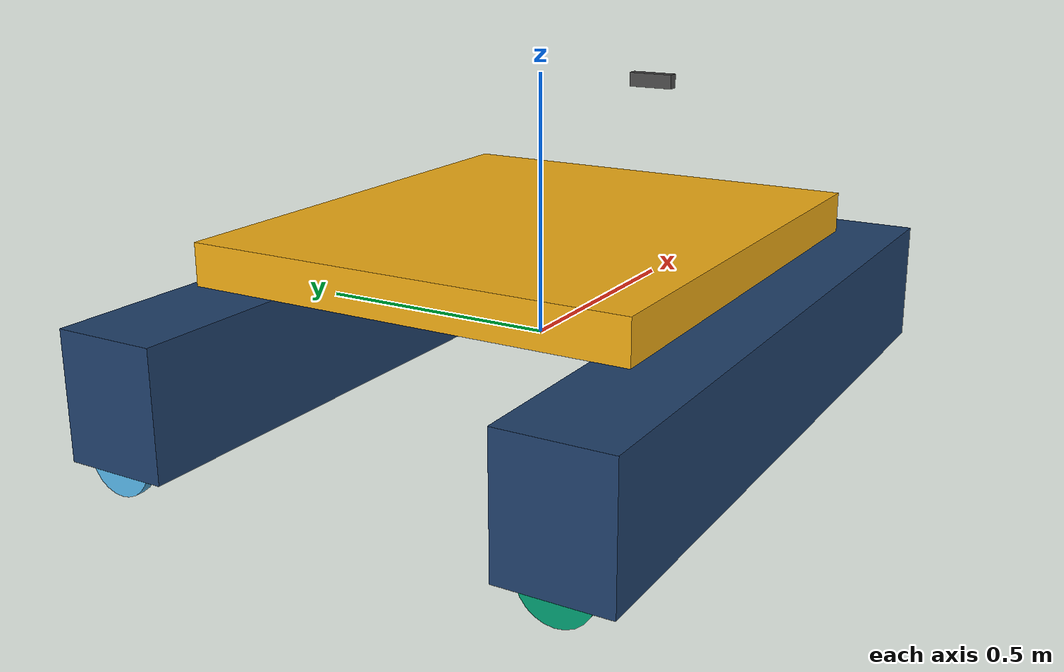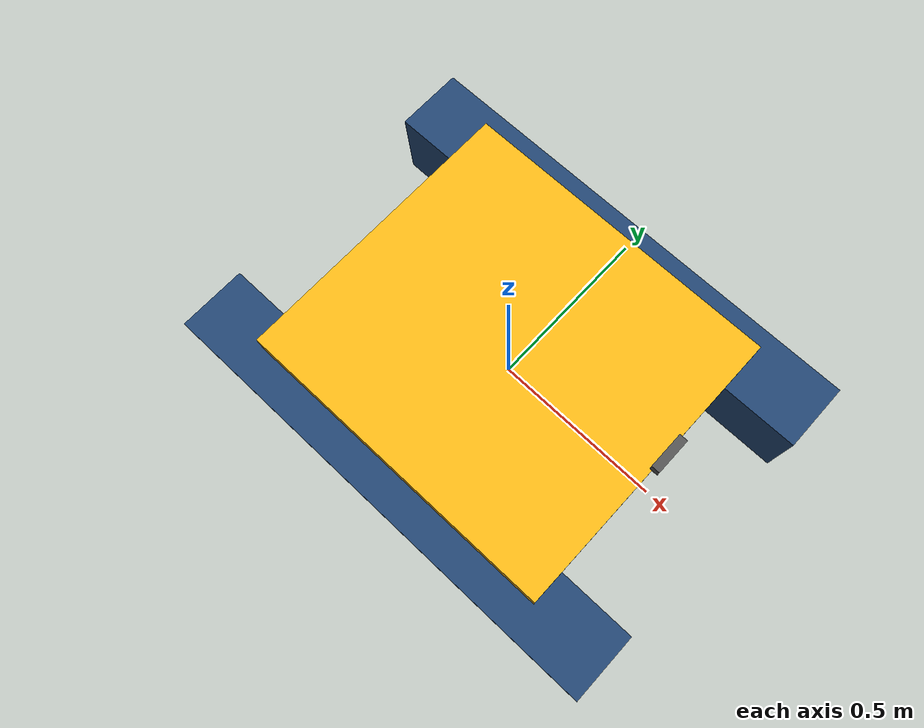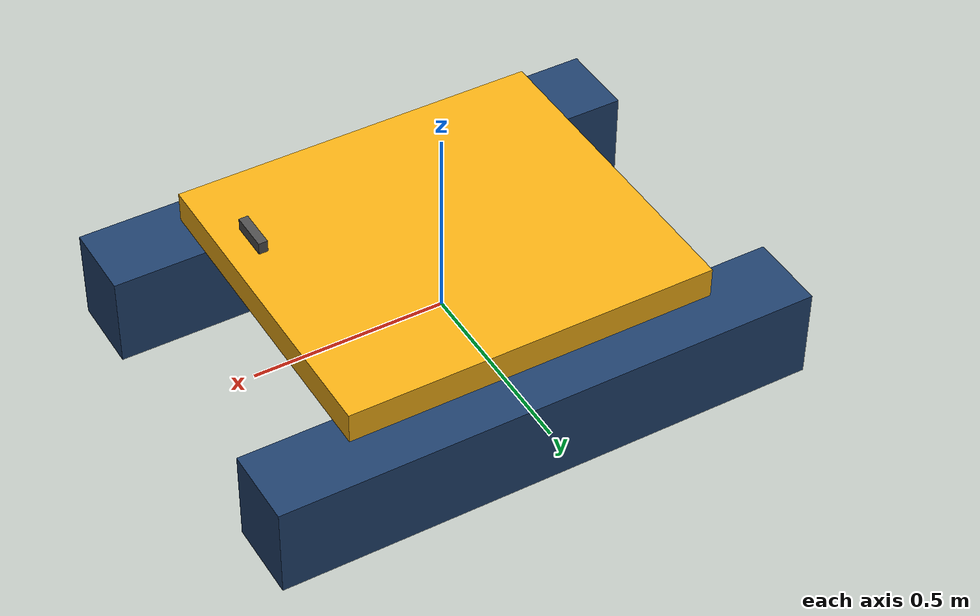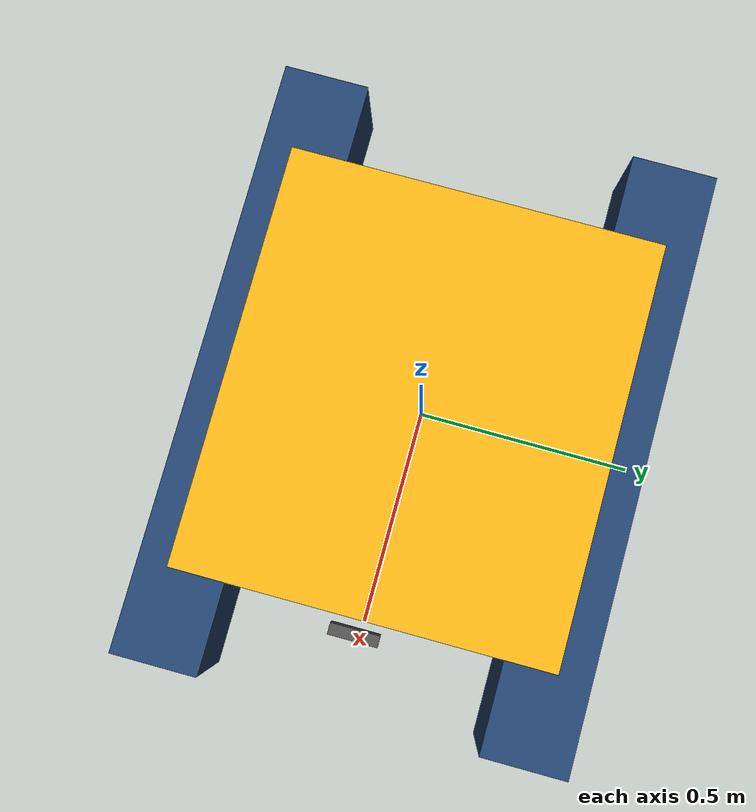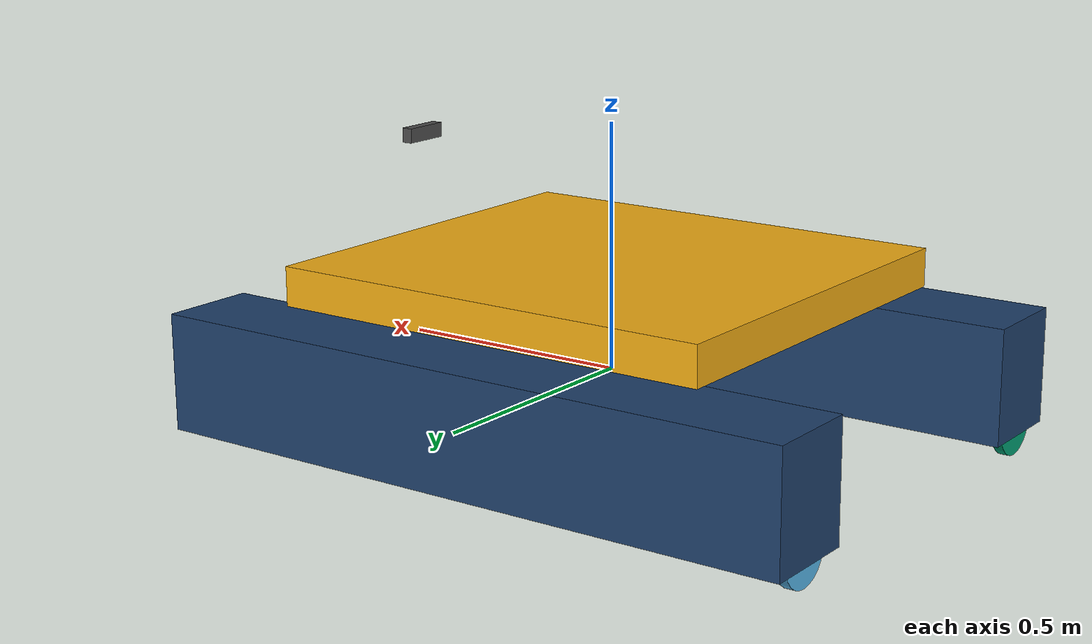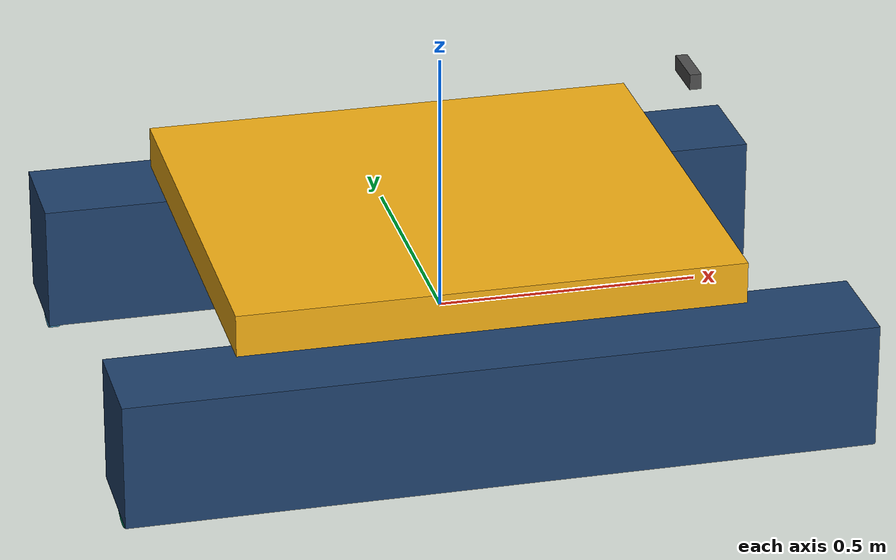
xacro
<?xml version='1.0' encoding='utf-8'?>
<robot xmlns:xacro="http://ros.org/wiki/xacro" name="lab_usv">
  <xacro:arg name="model_name" default="lab_usv" />
  <xacro:arg name="is_ignition" default="true" />
  <xacro:include filename="$(find robot_lab_robots)/description_common/urdf/oakd_camera.xacro" />
  <link name="base_link">
    <inertial>
      <origin xyz="0 0 -.1" rpy="0 0 0" />
      <mass value="70" />
      <inertia ixx="13.1" iyy="11.8" izz="24.2" ixy="0" ixz="0" iyz="0" />
    </inertial>
    <collision name="port_hull_collision">
      <origin xyz="0 .42 0" rpy="0 0 0" />
      <geometry>
        <box size="1.4 .2 .24" />
      </geometry>
    </collision>
    <visual name="port_hull_visual">
      <origin xyz="0 .42 0" rpy="0 0 0" />
      <geometry>
        <box size="1.4 .2 .24" />
      </geometry>
      <material name="port_hull_paint">
        <color rgba=".12 .25 .42 1" />
      </material>
    </visual>
    <collision name="starboard_hull_collision">
      <origin xyz="0 -.42 0" rpy="0 0 0" />
      <geometry>
        <box size="1.4 .2 .24" />
      </geometry>
    </collision>
    <visual name="starboard_hull_visual">
      <origin xyz="0 -.42 0" rpy="0 0 0" />
      <geometry>
        <box size="1.4 .2 .24" />
      </geometry>
      <material name="starboard_hull_paint">
        <color rgba=".12 .25 .42 1" />
      </material>
    </visual>
    <collision name="deck_collision">
      <origin xyz="0 0 .19" rpy="0 0 0" />
      <geometry>
        <box size=".95 .85 .08" />
      </geometry>
    </collision>
    <visual name="deck_visual">
      <origin xyz="0 0 .19" rpy="0 0 0" />
      <geometry>
        <box size=".95 .85 .08" />
      </geometry>
      <material name="deck_paint">
        <color rgba=".95 .68 .08 1" />
      </material>
    </visual>
  </link>
  <xacro:oakd name="oakd" parent_link="base_link" model="pro" mesh_visual="false" rate="5">
    <origin xyz=".48 0 .43" rpy="0 0 0" />
  </xacro:oakd>
  <gazebo reference="base_link">
    <sensor name="marine_imu" type="imu">
      <always_on>true</always_on>
      <update_rate>50</update_rate>
      <topic>/marine/imu</topic>
      <gz_frame_id>base_link</gz_frame_id>
    </sensor>
  </gazebo>
  <link name="port_propeller_link">
    <inertial>
      <mass value=".05" />
      <inertia ixx=".0001" iyy=".0001" izz=".0001" ixy="0" ixz="0" iyz="0" />
    </inertial>
    <visual>
      <origin xyz="0 0 0" rpy="0 1.57079632679 0" />
      <geometry>
        <cylinder radius=".065" length=".02" />
      </geometry>
    </visual>
  </link>
  <joint name="port_propeller_joint" type="continuous">
    <parent link="base_link" />
    <child link="port_propeller_link" />
    <origin xyz="-.68 0.42 -.1" rpy="0 0 0" />
    <axis xyz="1 0 0" />
    <limit effort="5" velocity="400" />
  </joint>
  <gazebo>
    <plugin filename="ignition-gazebo-thruster-system" name="ignition::gazebo::systems::Thruster">
      <namespace>$(arg model_name)</namespace>
      <joint_name>port_propeller_joint</joint_name>
      <thrust_coefficient>.0044</thrust_coefficient>
      <fluid_density>1025</fluid_density>
      <propeller_diameter>.13</propeller_diameter>
      <min_thrust_cmd>-35</min_thrust_cmd>
      <max_thrust_cmd>35</max_thrust_cmd>
      <velocity_control>true</velocity_control>
    </plugin>
  </gazebo>
  <link name="starboard_propeller_link">
    <inertial>
      <mass value=".05" />
      <inertia ixx=".0001" iyy=".0001" izz=".0001" ixy="0" ixz="0" iyz="0" />
    </inertial>
    <visual>
      <origin xyz="0 0 0" rpy="0 1.57079632679 0" />
      <geometry>
        <cylinder radius=".065" length=".02" />
      </geometry>
    </visual>
  </link>
  <joint name="starboard_propeller_joint" type="continuous">
    <parent link="base_link" />
    <child link="starboard_propeller_link" />
    <origin xyz="-.68 -0.42 -.1" rpy="0 0 0" />
    <axis xyz="1 0 0" />
    <limit effort="5" velocity="400" />
  </joint>
  <gazebo>
    <plugin filename="ignition-gazebo-thruster-system" name="ignition::gazebo::systems::Thruster">
      <namespace>$(arg model_name)</namespace>
      <joint_name>starboard_propeller_joint</joint_name>
      <thrust_coefficient>.0044</thrust_coefficient>
      <fluid_density>1025</fluid_density>
      <propeller_diameter>.13</propeller_diameter>
      <min_thrust_cmd>-35</min_thrust_cmd>
      <max_thrust_cmd>35</max_thrust_cmd>
      <velocity_control>true</velocity_control>
    </plugin>
  </gazebo>
  <gazebo>
    <plugin filename="ignition-gazebo-hydrodynamics-system" name="ignition::gazebo::systems::Hydrodynamics">
      <link_name>base_link</link_name>
      <xDotU>5</xDotU>
      <yDotV>12</yDotV>
      <zDotW>18</zDotW>
      <kDotP>0.4</kDotP>
      <mDotQ>0.7</mDotQ>
      <nDotR>1.0</nDotR>
      <xU>-18</xU>
      <yV>-40</yV>
      <zW>-100</zW>
      <kP>-6</kP>
      <mQ>-8</mQ>
      <nR>-6</nR>
      <xUabsU>-22</xUabsU>
      <yVabsV>-65</yVabsV>
      <zWabsW>-120</zWabsW>
      <kPabsP>-5</kPabsP>
      <mQabsQ>-6</mQabsQ>
      <nRabsR>-9</nRabsR>
    </plugin>
  </gazebo>
  <gazebo>
    <plugin filename="ignition-gazebo-odometry-publisher-system" name="ignition::gazebo::systems::OdometryPublisher">
      <odom_frame>map</odom_frame>
      <robot_base_frame>base_link</robot_base_frame>
      <odom_topic>/marine/odometry</odom_topic>
      <tf_topic>/marine/truth_pose</tf_topic>
      <odom_publish_frequency>50</odom_publish_frequency>
      <dimensions>3</dimensions>
    </plugin>
  </gazebo>
  <gazebo>
    <plugin filename="ignition-gazebo-joint-state-publisher-system" name="ignition::gazebo::systems::JointStatePublisher">
      <topic>/marine/joint_states</topic>
    </plugin>
  </gazebo>
</robot>

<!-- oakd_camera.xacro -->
<robot xmlns:xacro="http://ros.org/wiki/xacro">

  <xacro:macro name="dummy_inertial">
    <inertial>
      <mass value="0.0001"/>
      <inertia ixx="0.000001" ixy="0.0" ixz="0.0"
               iyy="0.000001" iyz="0.0" izz="0.000001"/>
    </inertial>
  </xacro:macro>

  <!-- Reusable OAK-D Pro / RGBD camera macro -->
  <xacro:macro name="oakd" params="name:=oakd parent_link *origin model:=pro mesh_visual:=true rate:=30">
    <xacro:property name="baseline" value="0.075"/>
    <xacro:property name="oakd_pi" value="3.1415926535897931"/>
    <xacro:property name="base_frame" value="${name}_link"/>

    <joint name="${name}_joint" type="fixed">
      <parent link="${parent_link}"/>
      <child link="${base_frame}"/>
      <xacro:insert_block name="origin"/>
    </joint>

    <link name="${base_frame}">
      <visual>
        <geometry>
          <xacro:if value="${mesh_visual}">
            <mesh filename="package://robot_lab_robots/description_common/meshes/oakd_${model}.stl" scale="1 1 1"/>
          </xacro:if>
          <xacro:unless value="${mesh_visual}">
            <box size="0.0225 0.097 0.03"/>
          </xacro:unless>
        </geometry>
        <material name="dark_grey"/>
      </visual>
      <collision>
        <origin xyz="-0.011 0 -0.005" rpy="0 0 0"/>
        <geometry>
          <box size="0.0225 0.097 0.03"/>
        </geometry>
      </collision>
      <inertial>
        <mass value="0.061"/>
        <inertia ixx="0.00000202475" ixy="0.0" ixz="0.0"
                 iyy="0.00001527320" iyz="0.0" izz="0.00001605536"/>
      </inertial>
    </link>

    <link name="${name}_rgb_camera_frame">
      <xacro:dummy_inertial/>
    </link>

    <joint name="${name}_rgb_camera_joint" type="fixed">
      <parent link="${base_frame}"/>
      <child link="${name}_rgb_camera_frame"/>
      <origin xyz="0 0 0" rpy="0 0 0"/>
    </joint>

    <link name="${name}_rgb_camera_optical_frame">
      <xacro:dummy_inertial/>
    </link>

    <joint name="${name}_rgb_camera_optical_joint" type="fixed">
      <parent link="${name}_rgb_camera_frame"/>
      <child link="${name}_rgb_camera_optical_frame"/>
      <origin xyz="0 0 0" rpy="${-oakd_pi/2} 0 ${-oakd_pi/2}"/>
    </joint>

    <link name="${name}_left_camera_frame">
      <xacro:dummy_inertial/>
    </link>

    <joint name="${name}_left_camera_joint" type="fixed">
      <parent link="${base_frame}"/>
      <child link="${name}_left_camera_frame"/>
      <origin xyz="0 ${baseline/2} 0" rpy="0 0 0"/>
    </joint>

    <link name="${name}_left_camera_optical_frame">
      <xacro:dummy_inertial/>
    </link>

    <joint name="${name}_left_camera_optical_joint" type="fixed">
      <parent link="${name}_left_camera_frame"/>
      <child link="${name}_left_camera_optical_frame"/>
      <origin xyz="0 0 0" rpy="${-oakd_pi/2} 0 ${-oakd_pi/2}"/>
    </joint>

    <link name="${name}_right_camera_frame">
      <xacro:dummy_inertial/>
    </link>

    <joint name="${name}_right_camera_joint" type="fixed">
      <parent link="${base_frame}"/>
      <child link="${name}_right_camera_frame"/>
      <origin xyz="0 ${-baseline/2} 0" rpy="0 0 0"/>
    </joint>

    <link name="${name}_right_camera_optical_frame">
      <xacro:dummy_inertial/>
    </link>

    <joint name="${name}_right_camera_optical_joint" type="fixed">
      <parent link="${name}_right_camera_frame"/>
      <child link="${name}_right_camera_optical_frame"/>
      <origin xyz="0 0 0" rpy="${-oakd_pi/2} 0 ${-oakd_pi/2}"/>
    </joint>

    <link name="${name}_imu_frame">
      <xacro:dummy_inertial/>
    </link>

    <joint name="${name}_imu_joint" type="fixed">
      <parent link="${base_frame}"/>
      <child link="${name}_imu_frame"/>
      <origin xyz="0 0 0" rpy="${-oakd_pi/2} 0 ${-oakd_pi/2}"/>
    </joint>

    <gazebo reference="${name}_rgb_camera_frame">
      <sensor name="rgbd_camera" type="rgbd_camera">
        <always_on>1</always_on>
        <update_rate>${rate}</update_rate>
        <visualize>true</visualize>
        <camera>
          <horizontal_fov>1.25</horizontal_fov>
          <image>
            <width>320</width>
            <height>240</height>
          </image>
          <clip>
            <near>0.3</near>
            <far>100</far>
          </clip>
          <optical_frame_id>${name}_rgb_camera_optical_frame</optical_frame_id>
        </camera>
      </sensor>
      <material>Gazebo/DarkGrey</material>
    </gazebo>

    <gazebo reference="${name}_joint">
      <preserveFixedJoint>true</preserveFixedJoint>
    </gazebo>
    <gazebo reference="${name}_rgb_camera_joint">
      <preserveFixedJoint>true</preserveFixedJoint>
    </gazebo>
    <gazebo reference="${name}_rgb_camera_optical_joint">
      <preserveFixedJoint>true</preserveFixedJoint>
    </gazebo>
    <gazebo reference="${name}_left_camera_joint">
      <preserveFixedJoint>true</preserveFixedJoint>
    </gazebo>
    <gazebo reference="${name}_left_camera_optical_joint">
      <preserveFixedJoint>true</preserveFixedJoint>
    </gazebo>
    <gazebo reference="${name}_right_camera_joint">
      <preserveFixedJoint>true</preserveFixedJoint>
    </gazebo>
    <gazebo reference="${name}_right_camera_optical_joint">
      <preserveFixedJoint>true</preserveFixedJoint>
    </gazebo>
    <gazebo reference="${name}_imu_joint">
      <preserveFixedJoint>true</preserveFixedJoint>
    </gazebo>
  </xacro:macro>

</robot>
